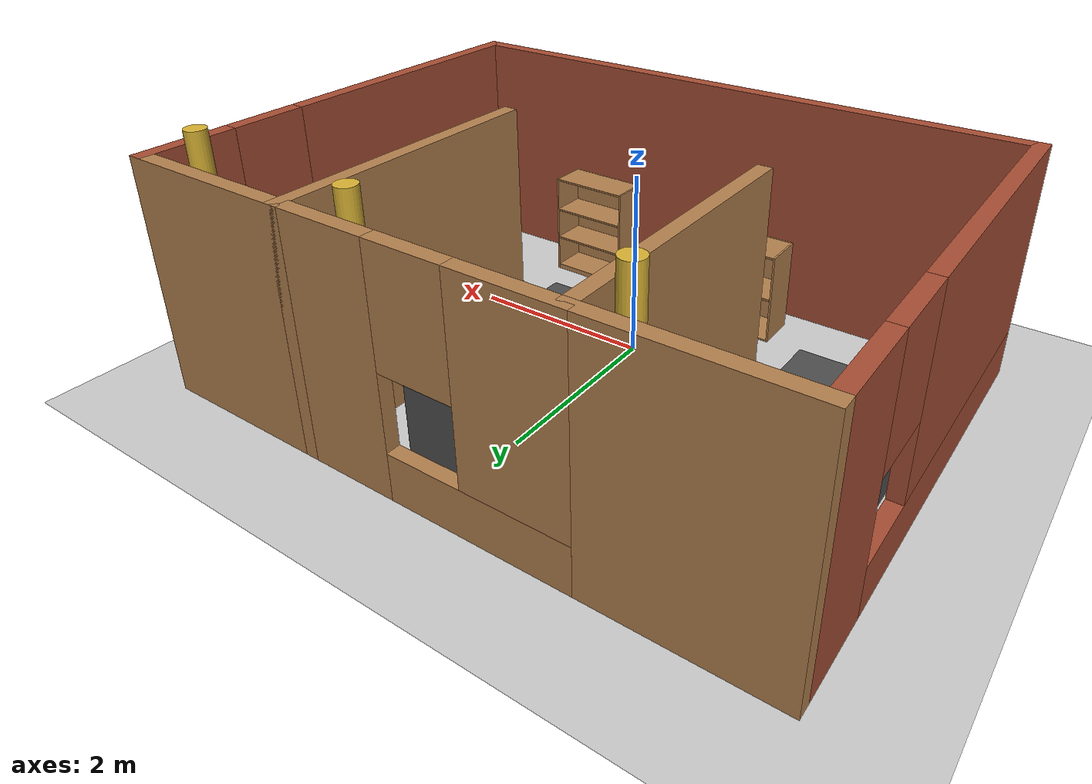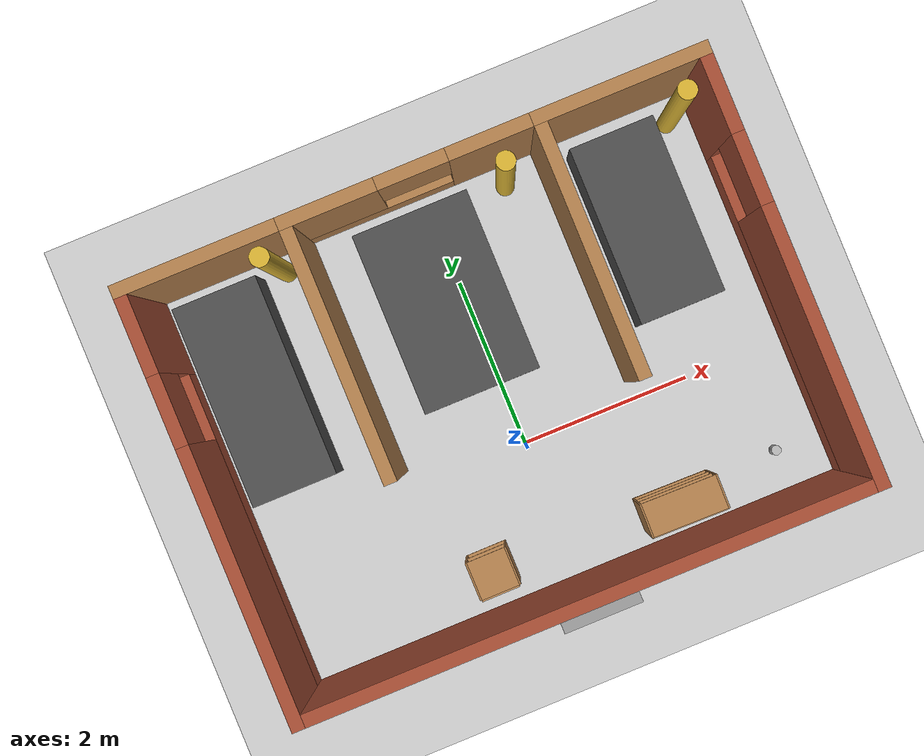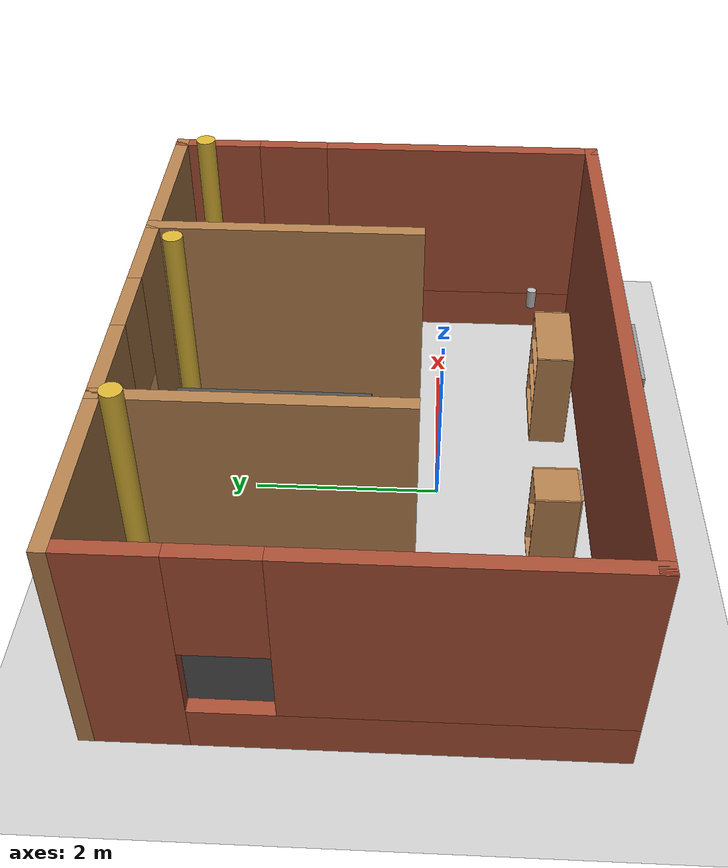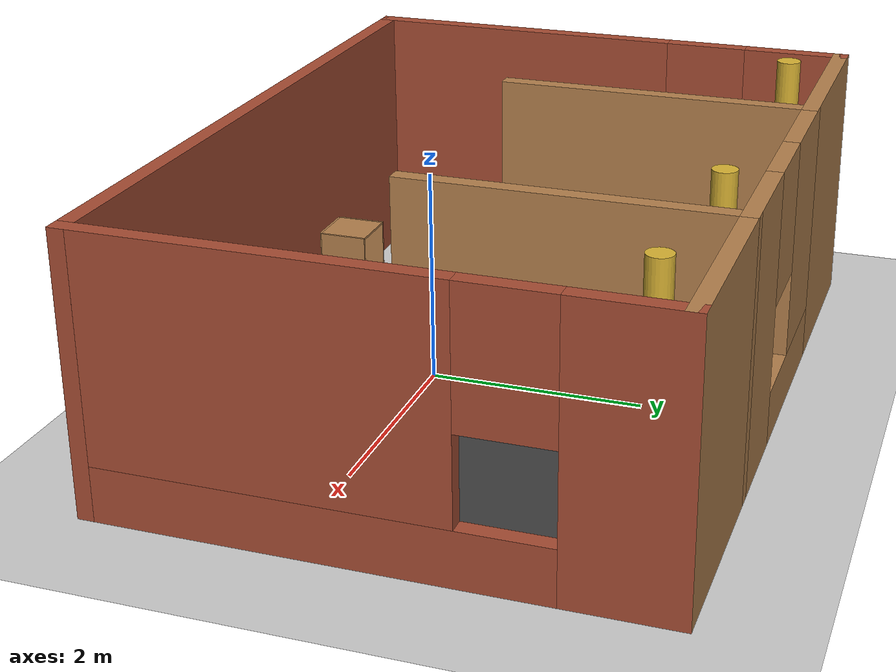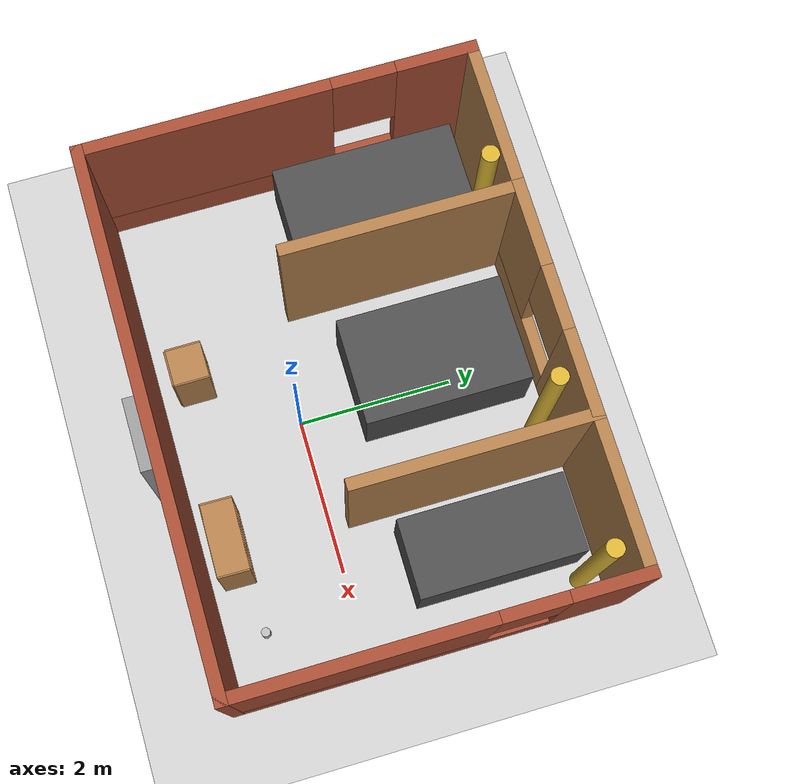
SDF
<sdf version="1.6">
 <world name="default">
  <light name="sun" type="directional">
   <pose>0 0 10 0 -0 0</pose>
   <diffuse>0.8 0.8 0.8 1</diffuse>
   <specular>0.2 0.2 0.2 1</specular>
   <attenuation>
    <range>1000</range>
    <constant>0.9</constant>
    <linear>0.01</linear>
    <quadratic>0.001</quadratic>
   </attenuation>
   <direction>-0.5 0.1 -0.9</direction>
  </light>
  <model name="ground_plane">
   <static>1</static>
   <link name="link">
    <collision name="collision">
     <geometry><plane><normal>0 0 1</normal><size>100 100</size></plane></geometry>
     <surface>
      <contact><collide_bitmask>65535</collide_bitmask></contact>
      <friction><ode><mu>100</mu><mu2>50</mu2></ode></friction>
     </surface>
    </collision>
    <visual name="visual">
     <cast_shadows>0</cast_shadows>
     <geometry><plane><normal>0 0 1</normal><size>100 100</size></plane></geometry>
     <material>
      <script><uri>file://media/materials/scripts/gazebo.material</uri><name>Gazebo/Grey</name></script>
     </material>
    </visual>
   </link>
  </model>
  <gravity>0 0 -9.8</gravity>
  <magnetic_field>6e-06 2.3e-05 -4.2e-05</magnetic_field>
  <atmosphere type="adiabatic"/>
  <physics name="default_physics" default="0" type="ode">
   <max_step_size>0.001</max_step_size>
   <real_time_factor>1</real_time_factor>
   <real_time_update_rate>1000</real_time_update_rate>
  </physics>
  <scene><ambient>0.4 0.4 0.4 1</ambient><background>0.7 0.7 0.7 1</background><shadows>1</shadows></scene>
  <audio><device>default</device></audio>
  <spherical_coordinates>
   <surface_model>EARTH_WGS84</surface_model>
   <latitude_deg>0</latitude_deg>
   <longitude_deg>0</longitude_deg>
   <elevation>0</elevation>
   <heading_deg>0</heading_deg>
  </spherical_coordinates>
  <model name="cabinet">
   <static>1</static>
   <link name="cabinet_bottom_plate">
    <inertial>
     <pose>0 0 -1 0 -0 0</pose>
     <inertia><ixx>2.05</ixx><ixy>0</ixy><ixz>0</ixz><iyy>2.05</iyy><iyz>0</iyz><izz>2.05</izz></inertia>
     <mass>25</mass>
    </inertial>
    <collision name="cabinet_bottom_plate_geom">
     <pose>0 0 0.01 0 -0 0</pose>
     <geometry><box><size>0.45 0.45 0.02</size></box></geometry>
    </collision>
    <visual name="cabinet_bottom_plate_geom_visual">
     <pose>0 0 0.01 0 -0 0</pose>
     <geometry><box><size>0.45 0.45 0.02</size></box></geometry>
     <material>
      <script><uri>file://media/materials/scripts/gazebo.material</uri><name>Gazebo/Wood</name></script>
     </material>
    </visual>
    <collision name="cabinet_bottom_plate_geom_cabinet_back_plate">
     <pose>0.235 0 0.51 0 -0 0</pose>
     <geometry><box><size>0.02 0.45 1.02</size></box></geometry>
    </collision>
    <visual name="cabinet_bottom_plate_geom_cabinet_back_plate_visual">
     <pose>0.235 0 0.51 0 -0 0</pose>
     <geometry><box><size>0.02 0.45 1.02</size></box></geometry>
     <material>
      <script><uri>file://media/materials/scripts/gazebo.material</uri><name>Gazebo/Wood</name></script>
     </material>
    </visual>
    <collision name="cabinet_bottom_plate_geom_cabinet_left_plate">
     <pose>0 0.235 0.51 0 -0 0</pose>
     <geometry><box><size>0.45 0.02 1.02</size></box></geometry>
    </collision>
    <visual name="cabinet_bottom_plate_geom_cabinet_left_plate_visual">
     <pose>0 0.235 0.51 0 -0 0</pose>
     <geometry><box><size>0.45 0.02 1.02</size></box></geometry>
     <material>
      <script><uri>file://media/materials/scripts/gazebo.material</uri><name>Gazebo/Wood</name></script>
     </material>
    </visual>
    <collision name="cabinet_bottom_plate_geom_cabinet_middle_plate">
     <pose>0 0 0.51 0 -0 0</pose>
     <geometry><box><size>0.45 0.45 0.02</size></box></geometry>
    </collision>
    <visual name="cabinet_bottom_plate_geom_cabinet_middle_plate_visual">
     <pose>0 0 0.51 0 -0 0</pose>
     <geometry><box><size>0.45 0.45 0.02</size></box></geometry>
     <material>
      <script><uri>file://media/materials/scripts/gazebo.material</uri><name>Gazebo/Wood</name></script>
     </material>
    </visual>
    <collision name="cabinet_bottom_plate_geom_cabinet_right_plate">
     <pose>0 -0.235 0.51 0 -0 0</pose>
     <geometry><box><size>0.45 0.02 1.02</size></box></geometry>
    </collision>
    <visual name="cabinet_bottom_plate_geom_cabinet_right_plate_visual">
     <pose>0 -0.235 0.51 0 -0 0</pose>
     <geometry><box><size>0.45 0.02 1.02</size></box></geometry>
     <material>
      <script><uri>file://media/materials/scripts/gazebo.material</uri><name>Gazebo/Wood</name></script>
     </material>
    </visual>
    <collision name="cabinet_bottom_plate_geom_cabinet_top_plate">
     <pose>0 0 1.01 0 -0 0</pose>
     <geometry><box><size>0.45 0.45 0.02</size></box></geometry>
    </collision>
    <visual name="cabinet_bottom_plate_geom_cabinet_top_plate_visual">
     <pose>0 0 1.01 0 -0 0</pose>
     <geometry><box><size>0.45 0.45 0.02</size></box></geometry>
     <material>
      <script><uri>file://media/materials/scripts/gazebo.material</uri><name>Gazebo/Wood</name></script>
     </material>
    </visual>
   </link>
   <pose>-0.884775 -1.17112 0 0 0 -1.56774</pose>
  </model>
  <model name="bookshelf">
   <static>1</static>
   <link name="link">
    <inertial><mass>1</mass></inertial>
    <collision name="back">
     <pose>0 0.005 0.6 0 -0 0</pose>
     <geometry><box><size>0.9 0.01 1.2</size></box></geometry>
    </collision>
    <visual name="visual1">
     <pose>0 0.005 0.6 0 -0 0</pose>
     <geometry><box><size>0.9 0.01 1.2</size></box></geometry>
     <material>
      <script><uri>file://media/materials/scripts/gazebo.material</uri><name>Gazebo/Wood</name></script>
     </material>
    </visual>
    <collision name="left_side">
     <pose>0.45 -0.195 0.6 0 -0 0</pose>
     <geometry><box><size>0.02 0.4 1.2</size></box></geometry>
    </collision>
    <visual name="visual2">
     <pose>0.45 -0.195 0.6 0 -0 0</pose>
     <geometry><box><size>0.02 0.4 1.2</size></box></geometry>
     <material>
      <script><uri>file://media/materials/scripts/gazebo.material</uri><name>Gazebo/Wood</name></script>
     </material>
    </visual>
    <collision name="right_side">
     <pose>-0.45 -0.195 0.6 0 -0 0</pose>
     <geometry><box><size>0.02 0.4 1.2</size></box></geometry>
    </collision>
    <visual name="visual3">
     <pose>-0.45 -0.195 0.6 0 -0 0</pose>
     <geometry><box><size>0.02 0.4 1.2</size></box></geometry>
     <material>
      <script><uri>file://media/materials/scripts/gazebo.material</uri><name>Gazebo/Wood</name></script>
     </material>
    </visual>
    <collision name="bottom">
     <pose>0 -0.195 0.03 0 -0 0</pose>
     <geometry><box><size>0.88 0.4 0.06</size></box></geometry>
    </collision>
    <visual name="visual4">
     <pose>0 -0.195 0.03 0 -0 0</pose>
     <geometry><box><size>0.88 0.4 0.06</size></box></geometry>
     <material>
      <script><uri>file://media/materials/scripts/gazebo.material</uri><name>Gazebo/Wood</name></script>
     </material>
    </visual>
    <collision name="top">
     <pose>0 -0.195 1.19 0 -0 0</pose>
     <geometry><box><size>0.88 0.4 0.02</size></box></geometry>
    </collision>
    <visual name="visual5">
     <pose>0 -0.195 1.19 0 -0 0</pose>
     <geometry><box><size>0.88 0.4 0.02</size></box></geometry>
     <material>
      <script><uri>file://media/materials/scripts/gazebo.material</uri><name>Gazebo/Wood</name></script>
     </material>
    </visual>
    <collision name="low_shelf">
     <pose>0 -0.195 0.43 0 -0 0</pose>
     <geometry><box><size>0.88 0.4 0.02</size></box></geometry>
    </collision>
    <visual name="visual6">
     <pose>0 -0.195 0.43 0 -0 0</pose>
     <geometry><box><size>0.88 0.4 0.02</size></box></geometry>
     <material>
      <script><uri>file://media/materials/scripts/gazebo.material</uri><name>Gazebo/Wood</name></script>
     </material>
    </visual>
    <collision name="high_shelf">
     <pose>0 -0.195 0.8 0 -0 0</pose>
     <geometry><box><size>0.88 0.4 0.02</size></box></geometry>
    </collision>
    <visual name="visual7">
     <pose>0 -0.195 0.8 0 -0 0</pose>
     <geometry><box><size>0.88 0.4 0.02</size></box></geometry>
     <material>
      <script><uri>file://media/materials/scripts/gazebo.material</uri><name>Gazebo/Wood</name></script>
     </material>
    </visual>
   </link>
   <pose>1.34963 -1.46711 0 0 -0 3.1269</pose>
  </model>
  <model name="beer">
   <link name="link">
    <pose>0 0 0.115 0 -0 0</pose>
    <inertial>
     <mass>0.39</mass>
     <inertia><ixx>0.00058</ixx><ixy>0</ixy><ixz>0</ixz><iyy>0.00058</iyy><iyz>0</iyz><izz>0.00019</izz></inertia>
    </inertial>
    <collision name="collision">
     <geometry><cylinder><radius>0.055</radius><length>0.23</length></cylinder></geometry>
    </collision>
    <visual name="visual">
     <geometry><cylinder><radius>0.055</radius><length>0.23</length></cylinder></geometry>
     <material>
      <script>
       <uri>model://beer/materials/scripts</uri>
       <uri>model://beer/materials/textures</uri>
       <name>Beer/Diffuse</name>
      </script>
     </material>
    </visual>
   </link>
   <pose>2.53904 -1.10306 0.761674 0 -0 0</pose>
  </model>
  <model name="lamps">
   <link name="link_1">
    <inertial>
     <mass>2.93243</mass>
     <inertia><ixx>1.36004</ixx><ixy>0</ixy><ixz>0</ixz><iyy>0.704614</iyy><iyz>0</iyz><izz>1.57592</izz></inertia>
    </inertial>
    <pose>-0.022909 0.039686 0 0 -0 0</pose>
    <visual name="visual">
     <geometry><box><size>1.37237 2.13671 1</size></box></geometry>
     <material>
      <lighting>1</lighting>
      <script><uri>file://media/materials/scripts/gazebo.material</uri><name>Gazebo/DarkGrey</name></script>
      <shader type="vertex"><normal_map>__default__</normal_map></shader>
      <ambient>0.175 0.175 0.175 1</ambient>
      <diffuse>0.175 0.175 0.175 1</diffuse>
      <specular>0.175 0.175 0.175 1</specular>
      <emissive>0 0 0 1</emissive>
     </material>
    </visual>
    <collision name="collision">
     <geometry><box><size>1.37237 2.13671 1</size></box></geometry>
     <surface>
      <friction>
       <ode><mu>1</mu><mu2>1</mu2><fdir1>0 0 0</fdir1><slip1>0</slip1><slip2>0</slip2></ode>
       <torsional>
        <coefficient>1</coefficient>
        <patch_radius>0</patch_radius>
        <surface_radius>0</surface_radius>
        <use_patch_radius>1</use_patch_radius>
        <ode><slip>0</slip></ode>
       </torsional>
      </friction>
      <bounce><restitution_coefficient>0</restitution_coefficient><threshold>1e+06</threshold></bounce>
      <contact>
       <collide_without_contact>0</collide_without_contact>
       <collide_without_contact_bitmask>1</collide_without_contact_bitmask>
       <collide_bitmask>1</collide_bitmask>
       <ode>
        <soft_cfm>0</soft_cfm>
        <soft_erp>0.2</soft_erp>
        <kp>1e+13</kp>
        <kd>1</kd>
        <max_vel>0.01</max_vel>
        <min_depth>0</min_depth>
       </ode>
       <bullet>
        <split_impulse>1</split_impulse>
        <split_impulse_penetration_threshold>-0.01</split_impulse_penetration_threshold>
        <soft_cfm>0</soft_cfm>
        <soft_erp>0.2</soft_erp>
        <kp>1e+13</kp>
        <kd>1</kd>
       </bullet>
      </contact>
     </surface>
    </collision>
   </link>
   <link name="link_1_0">
    <inertial>
     <mass>0.134545</mass>
     <inertia>
      <ixx>0.0952167</ixx>
      <ixy>0</ixy>
      <ixz>0</ixz>
      <iyy>0.0952167</iyy>
      <iyz>0</iyz>
      <izz>0.000778185</izz>
     </inertia>
    </inertial>
    <pose>-1.58542 1.09479 0.874123 0 -0 0</pose>
    <visual name="visual">
     <geometry><cylinder><radius>0.107553</radius><length>2.9082</length></cylinder></geometry>
     <material>
      <lighting>1</lighting>
      <script><uri>file://media/materials/scripts/gazebo.material</uri><name>Gazebo/Gold</name></script>
      <shader type="vertex"><normal_map>__default__</normal_map></shader>
      <ambient>0.4 0.249 0.021 1</ambient>
      <diffuse>0.8 0.649 0.121 1</diffuse>
      <specular>0.4 0.4 0.4 1</specular>
      <emissive>0 0 0 1</emissive>
     </material>
    </visual>
    <collision name="collision">
     <geometry><cylinder><radius>0.107553</radius><length>2.9082</length></cylinder></geometry>
     <surface>
      <friction>
       <ode><mu>1</mu><mu2>1</mu2><fdir1>0 0 0</fdir1><slip1>0</slip1><slip2>0</slip2></ode>
       <torsional>
        <coefficient>1</coefficient>
        <patch_radius>0</patch_radius>
        <surface_radius>0</surface_radius>
        <use_patch_radius>1</use_patch_radius>
        <ode><slip>0</slip></ode>
       </torsional>
      </friction>
      <bounce><restitution_coefficient>0</restitution_coefficient><threshold>1e+06</threshold></bounce>
      <contact>
       <collide_without_contact>0</collide_without_contact>
       <collide_without_contact_bitmask>1</collide_without_contact_bitmask>
       <collide_bitmask>1</collide_bitmask>
       <ode>
        <soft_cfm>0</soft_cfm>
        <soft_erp>0.2</soft_erp>
        <kp>1e+13</kp>
        <kd>1</kd>
        <max_vel>0.01</max_vel>
        <min_depth>0</min_depth>
       </ode>
       <bullet>
        <split_impulse>1</split_impulse>
        <split_impulse_penetration_threshold>-0.01</split_impulse_penetration_threshold>
        <soft_cfm>0</soft_cfm>
        <soft_erp>0.2</soft_erp>
        <kp>1e+13</kp>
        <kd>1</kd>
       </bullet>
      </contact>
     </surface>
    </collision>
   </link>
   <link name="link_1_0_clone">
    <inertial>
     <mass>0.125391</mass>
     <inertia>
      <ixx>0.0771217</ixx>
      <ixy>0</ixy>
      <ixz>0</ixz>
      <iyy>0.0771217</iyy>
      <iyz>0</iyz>
      <izz>0.000725238</izz>
     </inertia>
    </inertial>
    <pose>1.11192 1.06131 0.811927 0 -0 0</pose>
    <visual name="visual_0">
     <geometry><cylinder><radius>0.107553</radius><length>2.71033</length></cylinder></geometry>
     <material>
      <lighting>1</lighting>
      <script><uri>file://media/materials/scripts/gazebo.material</uri><name>Gazebo/Gold</name></script>
      <shader type="vertex"><normal_map>__default__</normal_map></shader>
      <ambient>0.4 0.249 0.021 1</ambient>
      <diffuse>0.8 0.649 0.121 1</diffuse>
      <specular>0.4 0.4 0.4 1</specular>
      <emissive>0 0 0 1</emissive>
     </material>
    </visual>
    <collision name="collision">
     <geometry><cylinder><radius>0.107553</radius><length>2.71033</length></cylinder></geometry>
     <surface>
      <friction>
       <ode><mu>1</mu><mu2>1</mu2><fdir1>0 0 0</fdir1><slip1>0</slip1><slip2>0</slip2></ode>
       <torsional>
        <coefficient>1</coefficient>
        <patch_radius>0</patch_radius>
        <surface_radius>0</surface_radius>
        <use_patch_radius>1</use_patch_radius>
        <ode><slip>0</slip></ode>
       </torsional>
      </friction>
      <bounce><restitution_coefficient>0</restitution_coefficient><threshold>1e+06</threshold></bounce>
      <contact>
       <collide_without_contact>0</collide_without_contact>
       <collide_without_contact_bitmask>1</collide_without_contact_bitmask>
       <collide_bitmask>1</collide_bitmask>
       <ode>
        <soft_cfm>0</soft_cfm>
        <soft_erp>0.2</soft_erp>
        <kp>1e+13</kp>
        <kd>1</kd>
        <max_vel>0.01</max_vel>
        <min_depth>0</min_depth>
       </ode>
       <bullet>
        <split_impulse>1</split_impulse>
        <split_impulse_penetration_threshold>-0.01</split_impulse_penetration_threshold>
        <soft_cfm>0</soft_cfm>
        <soft_erp>0.2</soft_erp>
        <kp>1e+13</kp>
        <kd>1</kd>
       </bullet>
      </contact>
     </surface>
    </collision>
   </link>
   <link name="link_1_0_clone_0">
    <inertial>
     <mass>0.12443</mass>
     <inertia>
      <ixx>0.075368</ixx>
      <ixy>0</ixy>
      <ixz>0</ixz>
      <iyy>0.075368</iyy>
      <iyz>0</iyz>
      <izz>0.000719681</izz>
     </inertia>
    </inertial>
    <pose>3.10417 1.02 0.872828 0 -0 0</pose>
    <visual name="visual_0">
     <geometry><cylinder><radius>0.107553</radius><length>2.68957</length></cylinder></geometry>
     <material>
      <lighting>1</lighting>
      <script><uri>file://media/materials/scripts/gazebo.material</uri><name>Gazebo/Gold</name></script>
      <shader type="vertex"><normal_map>__default__</normal_map></shader>
      <ambient>0.4 0.249 0.021 1</ambient>
      <diffuse>0.8 0.649 0.121 1</diffuse>
      <specular>0.4 0.4 0.4 1</specular>
      <emissive>0 0 0 1</emissive>
     </material>
    </visual>
    <collision name="collision">
     <geometry><cylinder><radius>0.107553</radius><length>2.68957</length></cylinder></geometry>
     <surface>
      <friction>
       <ode><mu>1</mu><mu2>1</mu2><fdir1>0 0 0</fdir1><slip1>0</slip1><slip2>0</slip2></ode>
       <torsional>
        <coefficient>1</coefficient>
        <patch_radius>0</patch_radius>
        <surface_radius>0</surface_radius>
        <use_patch_radius>1</use_patch_radius>
        <ode><slip>0</slip></ode>
       </torsional>
      </friction>
      <bounce><restitution_coefficient>0</restitution_coefficient><threshold>1e+06</threshold></bounce>
      <contact>
       <collide_without_contact>0</collide_without_contact>
       <collide_without_contact_bitmask>1</collide_without_contact_bitmask>
       <collide_bitmask>1</collide_bitmask>
       <ode>
        <soft_cfm>0</soft_cfm>
        <soft_erp>0.2</soft_erp>
        <kp>1e+13</kp>
        <kd>1</kd>
        <max_vel>0.01</max_vel>
        <min_depth>0</min_depth>
       </ode>
       <bullet>
        <split_impulse>1</split_impulse>
        <split_impulse_penetration_threshold>-0.01</split_impulse_penetration_threshold>
        <soft_cfm>0</soft_cfm>
        <soft_erp>0.2</soft_erp>
        <kp>1e+13</kp>
        <kd>1</kd>
       </bullet>
      </contact>
     </surface>
    </collision>
   </link>
   <link name="link_2">
    <inertial>
     <mass>2.10207</mass>
     <inertia>
      <ixx>0.949092</ixx>
      <ixy>0</ixy>
      <ixz>0</ixz>
      <iyy>0.350344</iyy>
      <iyz>0</iyz>
      <izz>0.949092</izz>
     </inertia>
    </inertial>
    <pose>2.38738 0.031494 0 0 -0 0</pose>
    <visual name="visual">
     <geometry><box><size>1 2.10192 1</size></box></geometry>
     <material>
      <lighting>1</lighting>
      <script><uri>file://media/materials/scripts/gazebo.material</uri><name>Gazebo/DarkGrey</name></script>
      <shader type="vertex"><normal_map>__default__</normal_map></shader>
      <ambient>0.175 0.175 0.175 1</ambient>
      <diffuse>0.175 0.175 0.175 1</diffuse>
      <specular>0.175 0.175 0.175 1</specular>
      <emissive>0 0 0 1</emissive>
     </material>
    </visual>
    <collision name="collision">
     <geometry><box><size>1 2.10192 1</size></box></geometry>
     <surface>
      <friction>
       <ode><mu>1</mu><mu2>1</mu2><fdir1>0 0 0</fdir1><slip1>0</slip1><slip2>0</slip2></ode>
       <torsional>
        <coefficient>1</coefficient>
        <patch_radius>0</patch_radius>
        <surface_radius>0</surface_radius>
        <use_patch_radius>1</use_patch_radius>
        <ode><slip>0</slip></ode>
       </torsional>
      </friction>
      <bounce><restitution_coefficient>0</restitution_coefficient><threshold>1e+06</threshold></bounce>
      <contact>
       <collide_without_contact>0</collide_without_contact>
       <collide_without_contact_bitmask>1</collide_without_contact_bitmask>
       <collide_bitmask>1</collide_bitmask>
       <ode>
        <soft_cfm>0</soft_cfm>
        <soft_erp>0.2</soft_erp>
        <kp>1e+13</kp>
        <kd>1</kd>
        <max_vel>0.01</max_vel>
        <min_depth>0</min_depth>
       </ode>
       <bullet>
        <split_impulse>1</split_impulse>
        <split_impulse_penetration_threshold>-0.01</split_impulse_penetration_threshold>
        <soft_cfm>0</soft_cfm>
        <soft_erp>0.2</soft_erp>
        <kp>1e+13</kp>
        <kd>1</kd>
       </bullet>
      </contact>
     </surface>
    </collision>
   </link>
   <link name="link_3">
    <inertial>
     <mass>2.37601</mass>
     <inertia><ixx>1.3158</ixx><ixy>0</ixy><ixz>0</ixz><iyy>0.396002</iyy><iyz>0</iyz><izz>1.3158</izz></inertia>
    </inertial>
    <pose>-2.36447 -0.07118 0 0 -0 0</pose>
    <visual name="visual">
     <geometry><box><size>1 2.37601 1</size></box></geometry>
     <material>
      <lighting>1</lighting>
      <script><uri>file://media/materials/scripts/gazebo.material</uri><name>Gazebo/DarkGrey</name></script>
      <shader type="vertex"><normal_map>__default__</normal_map></shader>
      <ambient>0.175 0.175 0.175 1</ambient>
      <diffuse>0.175 0.175 0.175 1</diffuse>
      <specular>0.175 0.175 0.175 1</specular>
      <emissive>0 0 0 1</emissive>
     </material>
    </visual>
    <collision name="collision">
     <geometry><box><size>1 2.37601 1</size></box></geometry>
     <surface>
      <friction>
       <ode><mu>1</mu><mu2>1</mu2><fdir1>0 0 0</fdir1><slip1>0</slip1><slip2>0</slip2></ode>
       <torsional>
        <coefficient>1</coefficient>
        <patch_radius>0</patch_radius>
        <surface_radius>0</surface_radius>
        <use_patch_radius>1</use_patch_radius>
        <ode><slip>0</slip></ode>
       </torsional>
      </friction>
      <bounce><restitution_coefficient>0</restitution_coefficient><threshold>1e+06</threshold></bounce>
      <contact>
       <collide_without_contact>0</collide_without_contact>
       <collide_without_contact_bitmask>1</collide_without_contact_bitmask>
       <collide_bitmask>1</collide_bitmask>
       <ode>
        <soft_cfm>0</soft_cfm>
        <soft_erp>0.2</soft_erp>
        <kp>1e+13</kp>
        <kd>1</kd>
        <max_vel>0.01</max_vel>
        <min_depth>0</min_depth>
       </ode>
       <bullet>
        <split_impulse>1</split_impulse>
        <split_impulse_penetration_threshold>-0.01</split_impulse_penetration_threshold>
        <soft_cfm>0</soft_cfm>
        <soft_erp>0.2</soft_erp>
        <kp>1e+13</kp>
        <kd>1</kd>
       </bullet>
      </contact>
     </surface>
    </collision>
   </link>
   <static>0</static>
   <pose>-0.199578 1.77095 0.5 0 -0 0</pose>
  </model>
  <model name="hospital.world">
   <pose>-0.025475 0.716372 0 0 -0 0</pose>
   <link name="Door_0">
    <collision name="Door_0_Collision">
     <geometry><box><size>0.9 0.17 2</size></box></geometry>
     <pose>0 0 1 0 -0 0</pose>
    </collision>
    <visual name="Door_0_Visual">
     <pose>0 0 1 0 -0 0</pose>
     <geometry><box><size>0.9 0.17 2</size></box></geometry>
     <material>
      <script><uri>file://media/materials/scripts/gazebo.material</uri><name>Gazebo/Grey</name></script>
     </material>
    </visual>
    <pose>0.08903 -2.59739 0 0 -0 0</pose>
   </link>
   <link name="Wall_35">
    <collision name="Wall_35_Collision">
     <geometry><box><size>2 0.15 2.5</size></box></geometry>
     <pose>0 0 1.25 0 -0 0</pose>
    </collision>
    <visual name="Wall_35_Visual">
     <pose>0 0 1.25 0 -0 0</pose>
     <geometry><box><size>2 0.15 2.5</size></box></geometry>
     <material>
      <script><uri>file://media/materials/scripts/gazebo.material</uri><name>Gazebo/Wood</name></script>
      <ambient>1 1 1 1</ambient>
     </material>
     <meta><layer>0</layer></meta>
    </visual>
    <pose>2.35 2.425 0 0 -0 0</pose>
   </link>
   <link name="Wall_50">
    <pose>3.275 0 0 0 -0 -1.5708</pose>
    <visual name="Wall_50_Visual_0">
     <pose>-1.99707 0 1.25 0 -0 0</pose>
     <geometry><box><size>1.00585 0.15 2.5</size></box></geometry>
     <material>
      <script><uri>file://media/materials/scripts/gazebo.material</uri><name>Gazebo/Bricks</name></script>
      <ambient>1 1 1 1</ambient>
     </material>
     <meta><layer>0</layer></meta>
    </visual>
    <collision name="Wall_50_Collision_0">
     <geometry><box><size>1.00585 0.15 2.5</size></box></geometry>
     <pose>-1.99707 0 1.25 0 -0 0</pose>
    </collision>
    <visual name="Wall_50_Visual_1">
     <pose>0.502926 0 0.25 0 -0 0</pose>
     <geometry><box><size>3.99415 0.15 0.5</size></box></geometry>
     <material>
      <script><uri>file://media/materials/scripts/gazebo.material</uri><name>Gazebo/Bricks</name></script>
      <ambient>1 1 1 1</ambient>
     </material>
     <meta><layer>0</layer></meta>
    </visual>
    <collision name="Wall_50_Collision_1">
     <geometry><box><size>3.99415 0.15 0.5</size></box></geometry>
     <pose>0.502926 0 0.25 0 -0 0</pose>
    </collision>
    <visual name="Wall_50_Visual_2">
     <pose>0.902926 0 1.5 0 -0 0</pose>
     <geometry><box><size>3.19415 0.15 2</size></box></geometry>
     <material>
      <script><uri>file://media/materials/scripts/gazebo.material</uri><name>Gazebo/Bricks</name></script>
      <ambient>1 1 1 1</ambient>
     </material>
     <meta><layer>0</layer></meta>
    </visual>
    <collision name="Wall_50_Collision_2">
     <geometry><box><size>3.19415 0.15 2</size></box></geometry>
     <pose>0.902926 0 1.5 0 -0 0</pose>
    </collision>
    <visual name="Wall_50_Visual_3">
     <pose>-1.09415 0 1.9 0 -0 0</pose>
     <geometry><box><size>0.8 0.15 1.2</size></box></geometry>
     <material>
      <script><uri>file://media/materials/scripts/gazebo.material</uri><name>Gazebo/Bricks</name></script>
      <ambient>1 1 1 1</ambient>
     </material>
     <meta><layer>0</layer></meta>
    </visual>
    <collision name="Wall_50_Collision_3">
     <geometry><box><size>0.8 0.15 1.2</size></box></geometry>
     <pose>-1.09415 0 1.9 0 -0 0</pose>
    </collision>
   </link>
   <link name="Wall_52">
    <collision name="Wall_52_Collision">
     <geometry><box><size>3 0.15 2.5</size></box></geometry>
     <pose>0 0 1.25 0 -0 0</pose>
    </collision>
    <visual name="Wall_52_Visual">
     <pose>0 0 1.25 0 -0 0</pose>
     <geometry><box><size>3 0.15 2.5</size></box></geometry>
     <material>
      <script><uri>file://media/materials/scripts/gazebo.material</uri><name>Gazebo/Wood</name></script>
      <ambient>1 1 1 1</ambient>
     </material>
     <meta><layer>0</layer></meta>
    </visual>
    <pose>1.425 1 0 0 -0 -1.5708</pose>
   </link>
   <link name="Wall_54">
    <pose>-0 2.425 0 0 -0 3.14159</pose>
    <visual name="Wall_54_Visual_0">
     <pose>-0.950738 0 1.25 0 -0 0</pose>
     <geometry><box><size>1.09852 0.15 2.5</size></box></geometry>
     <material>
      <script><uri>file://media/materials/scripts/gazebo.material</uri><name>Gazebo/Wood</name></script>
      <ambient>1 1 1 1</ambient>
     </material>
     <meta><layer>0</layer></meta>
    </visual>
    <collision name="Wall_54_Collision_0">
     <geometry><box><size>1.09852 0.15 2.5</size></box></geometry>
     <pose>-0.950738 0 1.25 0 -0 0</pose>
    </collision>
    <visual name="Wall_54_Visual_1">
     <pose>0.549262 0 0.25 0 -0 0</pose>
     <geometry><box><size>1.90148 0.15 0.5</size></box></geometry>
     <material>
      <script><uri>file://media/materials/scripts/gazebo.material</uri><name>Gazebo/Wood</name></script>
      <ambient>1 1 1 1</ambient>
     </material>
     <meta><layer>0</layer></meta>
    </visual>
    <collision name="Wall_54_Collision_1">
     <geometry><box><size>1.90148 0.15 0.5</size></box></geometry>
     <pose>0.549262 0 0.25 0 -0 0</pose>
    </collision>
    <visual name="Wall_54_Visual_2">
     <pose>0.949262 0 1.5 0 -0 0</pose>
     <geometry><box><size>1.10148 0.15 2</size></box></geometry>
     <material>
      <script><uri>file://media/materials/scripts/gazebo.material</uri><name>Gazebo/Wood</name></script>
      <ambient>1 1 1 1</ambient>
     </material>
     <meta><layer>0</layer></meta>
    </visual>
    <collision name="Wall_54_Collision_2">
     <geometry><box><size>1.10148 0.15 2</size></box></geometry>
     <pose>0.949262 0 1.5 0 -0 0</pose>
    </collision>
    <visual name="Wall_54_Visual_3">
     <pose>-0.001476 0 1.9 0 -0 0</pose>
     <geometry><box><size>0.8 0.15 1.2</size></box></geometry>
     <material>
      <script><uri>file://media/materials/scripts/gazebo.material</uri><name>Gazebo/Wood</name></script>
      <ambient>1 1 1 1</ambient>
     </material>
     <meta><layer>0</layer></meta>
    </visual>
    <collision name="Wall_54_Collision_3">
     <geometry><box><size>0.8 0.15 1.2</size></box></geometry>
     <pose>-0.001476 0 1.9 0 -0 0</pose>
    </collision>
   </link>
   <link name="Wall_55">
    <collision name="Wall_55_Collision">
     <geometry><box><size>3 0.15 2.5</size></box></geometry>
     <pose>0 0 1.25 0 -0 0</pose>
    </collision>
    <visual name="Wall_55_Visual">
     <pose>0 0 1.25 0 -0 0</pose>
     <geometry><box><size>3 0.15 2.5</size></box></geometry>
     <material>
      <script><uri>file://media/materials/scripts/gazebo.material</uri><name>Gazebo/Wood</name></script>
      <ambient>1 1 1 1</ambient>
     </material>
     <meta><layer>0</layer></meta>
    </visual>
    <pose>-1.425 1 0 0 -0 -1.5708</pose>
   </link>
   <link name="Wall_57">
    <collision name="Wall_57_Collision">
     <geometry><box><size>2 0.15 2.5</size></box></geometry>
     <pose>0 0 1.25 0 -0 0</pose>
    </collision>
    <visual name="Wall_57_Visual">
     <pose>0 0 1.25 0 -0 0</pose>
     <geometry><box><size>2 0.15 2.5</size></box></geometry>
     <material>
      <script><uri>file://media/materials/scripts/gazebo.material</uri><name>Gazebo/Wood</name></script>
      <ambient>1 1 1 1</ambient>
     </material>
     <meta><layer>0</layer></meta>
    </visual>
    <pose>-2.35 2.425 0 0 -0 3.14159</pose>
   </link>
   <link name="Wall_58">
    <pose>-3.275 0 0 0 -0 -1.5708</pose>
    <visual name="Wall_58_Visual_0">
     <pose>-1.98589 0 1.25 0 -0 0</pose>
     <geometry><box><size>1.02822 0.15 2.5</size></box></geometry>
     <material>
      <script><uri>file://media/materials/scripts/gazebo.material</uri><name>Gazebo/Bricks</name></script>
      <ambient>1 1 1 1</ambient>
     </material>
     <meta><layer>0</layer></meta>
    </visual>
    <collision name="Wall_58_Collision_0">
     <geometry><box><size>1.02822 0.15 2.5</size></box></geometry>
     <pose>-1.98589 0 1.25 0 -0 0</pose>
    </collision>
    <visual name="Wall_58_Visual_1">
     <pose>0.514113 0 0.25 0 -0 0</pose>
     <geometry><box><size>3.97178 0.15 0.5</size></box></geometry>
     <material>
      <script><uri>file://media/materials/scripts/gazebo.material</uri><name>Gazebo/Bricks</name></script>
      <ambient>1 1 1 1</ambient>
     </material>
     <meta><layer>0</layer></meta>
    </visual>
    <collision name="Wall_58_Collision_1">
     <geometry><box><size>3.97178 0.15 0.5</size></box></geometry>
     <pose>0.514113 0 0.25 0 -0 0</pose>
    </collision>
    <visual name="Wall_58_Visual_2">
     <pose>0.914113 0 1.5 0 -0 0</pose>
     <geometry><box><size>3.17177 0.15 2</size></box></geometry>
     <material>
      <script><uri>file://media/materials/scripts/gazebo.material</uri><name>Gazebo/Bricks</name></script>
      <ambient>1 1 1 1</ambient>
     </material>
     <meta><layer>0</layer></meta>
    </visual>
    <collision name="Wall_58_Collision_2">
     <geometry><box><size>3.17177 0.15 2</size></box></geometry>
     <pose>0.914113 0 1.5 0 -0 0</pose>
    </collision>
    <visual name="Wall_58_Visual_3">
     <pose>-1.07177 0 1.9 0 -0 0</pose>
     <geometry><box><size>0.8 0.15 1.2</size></box></geometry>
     <material>
      <script><uri>file://media/materials/scripts/gazebo.material</uri><name>Gazebo/Bricks</name></script>
      <ambient>1 1 1 1</ambient>
     </material>
     <meta><layer>0</layer></meta>
    </visual>
    <collision name="Wall_58_Collision_3">
     <geometry><box><size>0.8 0.15 1.2</size></box></geometry>
     <pose>-1.07177 0 1.9 0 -0 0</pose>
    </collision>
   </link>
   <link name="Wall_59">
    <collision name="Wall_59_Collision">
     <geometry><box><size>6.7 0.15 2.5</size></box></geometry>
     <pose>0 0 1.25 0 -0 0</pose>
    </collision>
    <visual name="Wall_59_Visual">
     <pose>0 0 1.25 0 -0 0</pose>
     <geometry><box><size>6.7 0.15 2.5</size></box></geometry>
     <material>
      <script><uri>file://media/materials/scripts/gazebo.material</uri><name>Gazebo/Bricks</name></script>
      <ambient>1 1 1 1</ambient>
     </material>
     <meta><layer>0</layer></meta>
    </visual>
    <pose>-0 -2.425 0 0 -0 0</pose>
   </link>
   <static>1</static>
  </model>
 </world>
</sdf>
